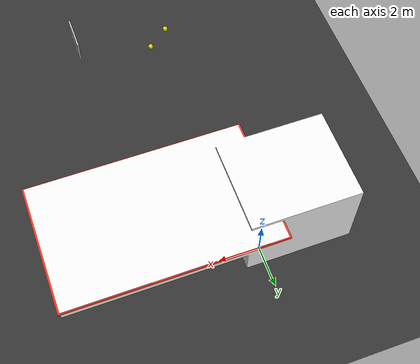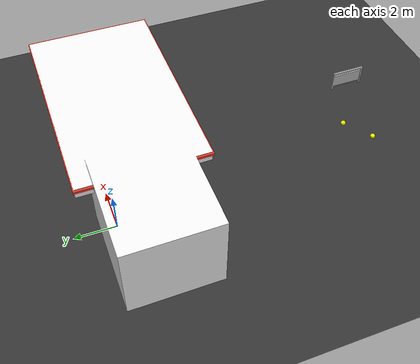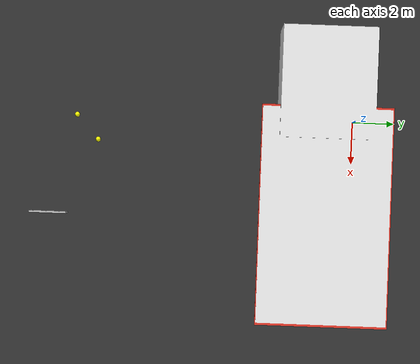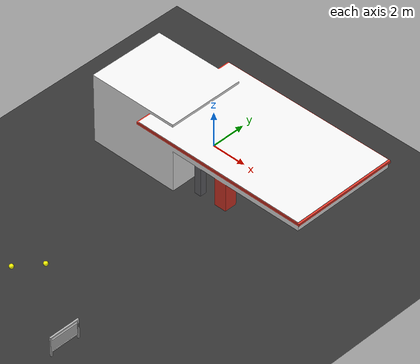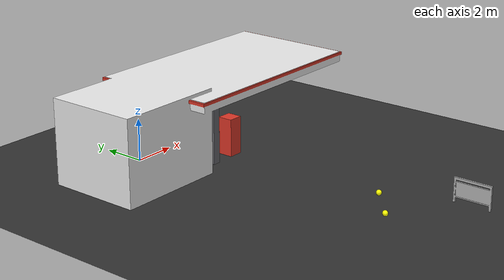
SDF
<sdf version="1.10">
 <world name="refuel_gas_station">
  <physics name="4ms" type="ignored">
   <max_step_size>0.0040000000000000001</max_step_size>
   <real_time_factor>1</real_time_factor>
   <real_time_update_rate>1000</real_time_update_rate>
  </physics>
  <plugin name="gz::sim::systems::Physics" filename="gz-sim-physics-system"/>
  <plugin name="gz::sim::systems::UserCommands" filename="gz-sim-user-commands-system"/>
  <plugin name="gz::sim::systems::SceneBroadcaster" filename="gz-sim-scene-broadcaster-system"/>
  <gravity>0 0 -9.8000000000000007</gravity>
  <magnetic_field>5.5644999999999998e-06 2.2875799999999999e-05 -4.2388400000000002e-05</magnetic_field>
  <atmosphere type="adiabatic"/>
  <scene>
   <ambient>0.400000006 0.400000006 0.400000006 1</ambient>
   <background>0.699999988 0.699999988 0.699999988 1</background>
   <shadows>true</shadows>
  </scene>
  <model name="ground_plane">
   <static>true</static>
   <link name="link">
    <collision name="collision">
     <geometry><plane><normal>0 0 1</normal><size>1 1</size></plane></geometry>
    </collision>
    <visual name="visual">
     <geometry><plane><normal>0 0 1</normal><size>100 100</size></plane></geometry>
     <material>
      <ambient>0.200000003 0.200000003 0.200000003 1</ambient>
      <diffuse>0.200000003 0.200000003 0.200000003 1</diffuse>
     </material>
    </visual>
    <inertial>
     <mass>1</mass>
     <inertia><ixx>1</ixx><ixy>0</ixy><ixz>0</ixz><iyy>1</iyy><iyz>0</iyz><izz>1</izz></inertia>
    </inertial>
   </link>
  </model>
  <include>
   <uri>file:///Users/anuragx/Desktop/Archives/projects/refuel-arm/kuka_refuel_ws/src/kuka_kr6_gazebo/models/gas_station</uri>
   <name>gas_station</name>
   <pose>2.1000000000000001 -1.45 0 0 0 0</pose>
  </include>
  <include>
   <uri>file:///Users/anuragx/Desktop/Archives/projects/refuel-arm/kuka_refuel_ws/src/kuka_kr6_gazebo/models/FoodCourtBarricade</uri>
   <name>barricade</name>
   <pose>4.8319999999999999 -14.509 0.01 0 0 1.5699999999999998</pose>
  </include>
  <model name="dot_dispenser">
   <static>false</static>
   <pose>1.2640416622161865 -12.185000419616699 1.2171000242233276 0 0 0</pose>
   <link name="link">
    <inertial>
     <mass>0.10000000000000001</mass>
     <inertia><ixx>0.001</ixx><iyy>0.001</iyy><izz>0.001</izz><ixy>0</ixy><ixz>0</ixz><iyz>0</iyz></inertia>
    </inertial>
    <collision name="col"><geometry><sphere><radius>0.12</radius></sphere></geometry></collision>
    <visual name="vis">
     <geometry><sphere><radius>0.12</radius></sphere></geometry>
     <material><ambient>1 1 0 1</ambient><diffuse>1 1 0 1</diffuse></material>
    </visual>
   </link>
  </model>
  <model name="dot_inlet">
   <static>false</static>
   <pose>0.11403899639844894 -13.236710548400879 1.0072900056838989 0 0 0</pose>
   <link name="link">
    <inertial>
     <mass>0.10000000000000001</mass>
     <inertia><ixx>0.001</ixx><iyy>0.001</iyy><izz>0.001</izz><ixy>0</ixy><ixz>0</ixz><iyz>0</iyz></inertia>
    </inertial>
    <collision name="col"><geometry><sphere><radius>0.12</radius></sphere></geometry></collision>
    <visual name="vis">
     <geometry><sphere><radius>0.12</radius></sphere></geometry>
     <material><ambient>1 1 0 1</ambient><diffuse>1 1 0 1</diffuse></material>
    </visual>
   </link>
  </model>
  <light name="sun" type="directional">
   <pose>0 0 10 0 0 0</pose>
   <cast_shadows>false</cast_shadows>
   <intensity>1</intensity>
   <direction>-0.5 0.10000000000000001 -0.90000000000000002</direction>
   <diffuse>0.800000012 0.800000012 0.800000012 1</diffuse>
   <specular>0.200000003 0.200000003 0.200000003 1</specular>
   <attenuation><range>10</range><linear>1</linear><constant>1</constant><quadratic>0</quadratic></attenuation>
   <spot><inner_angle>0</inner_angle><outer_angle>0</outer_angle><falloff>0</falloff></spot>
  </light>
 </world>
</sdf>

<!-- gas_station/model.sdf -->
<sdf version="1.5">
  <model name="Gas Station">
    <static>true</static>
    <link name="link">
      <pose>0 0 0 0 0 0</pose>
      <collision name="collision">
        <geometry>
          <mesh>
            <uri>model://gas_station/meshes/gas_station.dae</uri>
          </mesh>
        </geometry>
      </collision>
      <visual name="visual">
        <geometry>
          <mesh>
            <uri>model://gas_station/meshes/gas_station.dae</uri>
          </mesh>
        </geometry>
        <material>
          <pbr>
            <metal>
              <albedo_map>model://gas_station/materials/textures/GasStation_Diffuse.png</albedo_map>
              <normal_map>model://gas_station/materials/textures/GasStation_Normal.png</normal_map>
              <roughness>0.6</roughness>
              <metalness>0.0</metalness>
            </metal>
          </pbr>
          <!-- Fallback for legacy systems -->
          <script>
            <uri>model://gas_station/materials/scripts</uri>
            <uri>model://gas_station/materials/textures</uri>
            <name>GasStation/Diffuse</name>
          </script>
        </material>
      </visual>
    </link>
  </model>
</sdf>

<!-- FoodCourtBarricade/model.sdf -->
<sdf version="1.6">
  <model name="FoodCourtBarricade">
   <static>true</static>
    <link name="body">
      <pose>0 0 0 0 0 0</pose>

      <visual name="visual">
        <geometry>
          <mesh>
            <uri>model://FoodCourtBarricade/meshes/FoodCourtBarricade.dae</uri>
          </mesh>
        </geometry>
      </visual>

      <collision name="collision">
        <geometry>
          <mesh>
            <uri>model://FoodCourtBarricade/meshes/FoodCourtBarricade_Col.obj</uri>
          </mesh>
        </geometry>
      </collision>

    </link>
  </model>
</sdf>
